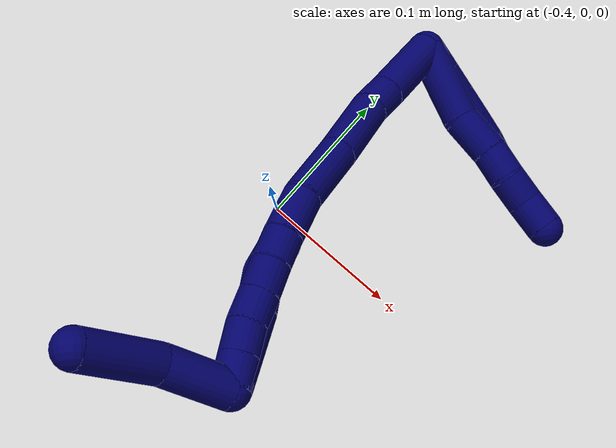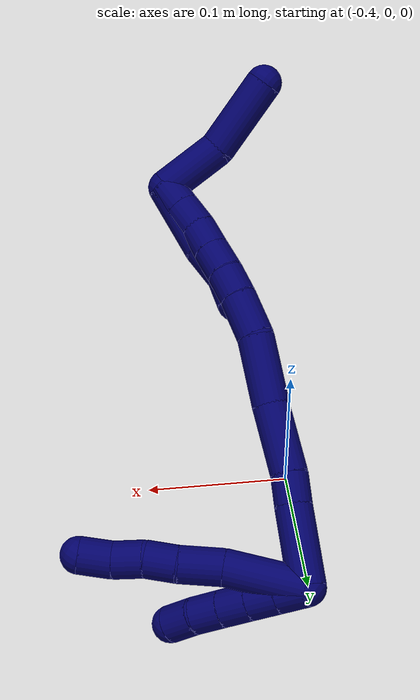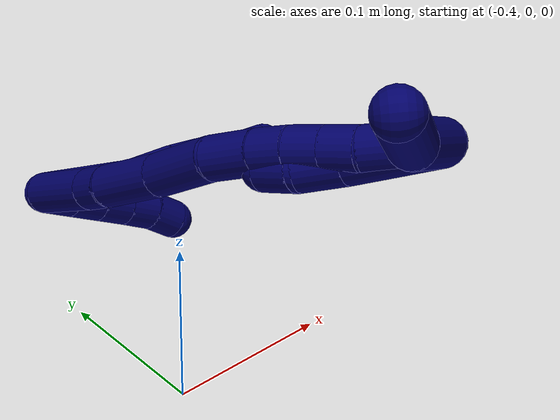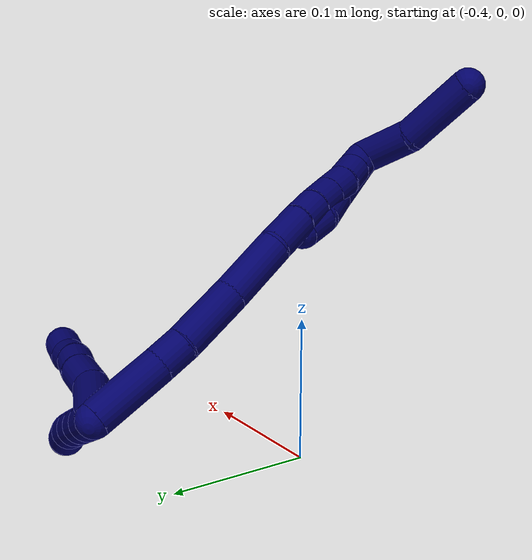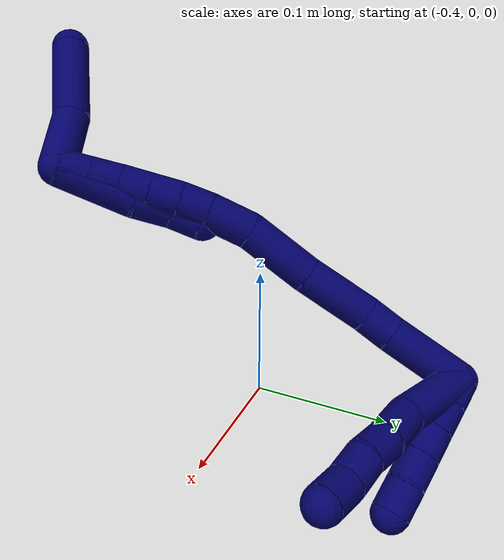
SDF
<sdf version="1.7">
 <world name="default">
  <model name="7">
   <static>0</static>
   <link name="7">
    <collision name="collision-cylinder-e_1_2_8">
     <pose>-0.004062 0.008483 -0.025797 -2.8239 -0.14847 0.869293</pose>
     <geometry><cylinder><radius>0.0125</radius><length>0.054916</length></cylinder></geometry>
     <surface>
      <friction><ode><mu>1.16</mu><mu2>1.16</mu2><slip1>0</slip1><slip2>0</slip2></ode></friction>
      <contact><ode><kp>1e+06</kp><kd>1</kd><max_vel>0</max_vel><min_depth>0.001</min_depth></ode></contact>
     </surface>
    </collision>
    <visual name="visual-cylinder-e_1_2_8">
     <pose>-0.004062 0.008483 -0.025797 -2.8239 -0.14847 0.869293</pose>
     <geometry><cylinder><radius>0.0125</radius><length>0.054916</length></cylinder></geometry>
     <material><ambient>0.003922 0 0.403922 1</ambient></material>
    </visual>
    <collision name="collision-cylinder-e_2_8_9">
     <pose>-0.009658 0.025133 -0.064188 -2.56629 -0.101876 0.341289</pose>
     <geometry><cylinder><radius>0.0125</radius><length>0.030178</length></cylinder></geometry>
     <surface>
      <friction><ode><mu>1.16</mu><mu2>1.16</mu2><slip1>0</slip1><slip2>0</slip2></ode></friction>
      <contact><ode><kp>1e+06</kp><kd>1</kd><max_vel>0</max_vel><min_depth>0.001</min_depth></ode></contact>
     </surface>
    </collision>
    <visual name="visual-cylinder-e_2_8_9">
     <pose>-0.009658 0.025133 -0.064188 -2.56629 -0.101876 0.341289</pose>
     <geometry><cylinder><radius>0.0125</radius><length>0.030178</length></cylinder></geometry>
     <material><ambient>0.003922 0 0.403922 1</ambient></material>
    </visual>
    <collision name="collision-cylinder-e_3_9_10">
     <pose>-0.012456 0.037796 -0.086332 -2.70154 -0.119136 0.521202</pose>
     <geometry><cylinder><radius>0.0125</radius><length>0.021259</length></cylinder></geometry>
     <surface>
      <friction><ode><mu>1.16</mu><mu2>1.16</mu2><slip1>0</slip1><slip2>0</slip2></ode></friction>
      <contact><ode><kp>1e+06</kp><kd>1</kd><max_vel>0</max_vel><min_depth>0.001</min_depth></ode></contact>
     </surface>
    </collision>
    <visual name="visual-cylinder-e_3_9_10">
     <pose>-0.012456 0.037796 -0.086332 -2.70154 -0.119136 0.521202</pose>
     <geometry><cylinder><radius>0.0125</radius><length>0.021259</length></cylinder></geometry>
     <material><ambient>0.003922 0 0.403922 1</ambient></material>
    </visual>
    <collision name="collision-cylinder-e_4_10_11">
     <pose>-0.01702 0.047335 -0.104549 -2.6147 -0.317989 1.07273</pose>
     <geometry><cylinder><radius>0.0125</radius><length>0.021117</length></cylinder></geometry>
     <surface>
      <friction><ode><mu>1.16</mu><mu2>1.16</mu2><slip1>0</slip1><slip2>0</slip2></ode></friction>
      <contact><ode><kp>1e+06</kp><kd>1</kd><max_vel>0</max_vel><min_depth>0.001</min_depth></ode></contact>
     </surface>
    </collision>
    <visual name="visual-cylinder-e_4_10_11">
     <pose>-0.01702 0.047335 -0.104549 -2.6147 -0.317989 1.07273</pose>
     <geometry><cylinder><radius>0.0125</radius><length>0.021117</length></cylinder></geometry>
     <material><ambient>0.003922 0 0.403922 1</ambient></material>
    </visual>
    <collision name="collision-cylinder-e_5_11_6">
     <pose>-0.02118 0.057768 -0.123073 -2.64111 -0.076308 0.296502</pose>
     <geometry><cylinder><radius>0.0125</radius><length>0.02253</length></cylinder></geometry>
     <surface>
      <friction><ode><mu>1.16</mu><mu2>1.16</mu2><slip1>0</slip1><slip2>0</slip2></ode></friction>
      <contact><ode><kp>1e+06</kp><kd>1</kd><max_vel>0</max_vel><min_depth>0.001</min_depth></ode></contact>
     </surface>
    </collision>
    <visual name="visual-cylinder-e_5_11_6">
     <pose>-0.02118 0.057768 -0.123073 -2.64111 -0.076308 0.296502</pose>
     <geometry><cylinder><radius>0.0125</radius><length>0.02253</length></cylinder></geometry>
     <material><ambient>0.003922 0 0.403922 1</ambient></material>
    </visual>
    <collision name="collision-cylinder-e_1_2_12">
     <pose>-0.005746 0.004261 -0.006988 -2.59404 -0.61213 1.68851</pose>
     <geometry><cylinder><radius>0.0125</radius><length>0.02</length></cylinder></geometry>
     <surface>
      <friction><ode><mu>1.16</mu><mu2>1.16</mu2><slip1>0</slip1><slip2>0</slip2></ode></friction>
      <contact><ode><kp>1e+06</kp><kd>1</kd><max_vel>0</max_vel><min_depth>0.001</min_depth></ode></contact>
     </surface>
    </collision>
    <visual name="visual-cylinder-e_1_2_12">
     <pose>-0.005746 0.004261 -0.006988 -2.59404 -0.61213 1.68851</pose>
     <geometry><cylinder><radius>0.0125</radius><length>0.02</length></cylinder></geometry>
     <material><ambient>0.003922 0 0.403922 1</ambient></material>
    </visual>
    <collision name="collision-cylinder-e_2_12_13">
     <pose>-0.017233 0.012776 -0.020972 -2.59521 -0.611434 1.68953</pose>
     <geometry><cylinder><radius>0.0125</radius><length>0.02</length></cylinder></geometry>
     <surface>
      <friction><ode><mu>1.16</mu><mu2>1.16</mu2><slip1>0</slip1><slip2>0</slip2></ode></friction>
      <contact><ode><kp>1e+06</kp><kd>1</kd><max_vel>0</max_vel><min_depth>0.001</min_depth></ode></contact>
     </surface>
    </collision>
    <visual name="visual-cylinder-e_2_12_13">
     <pose>-0.017233 0.012776 -0.020972 -2.59521 -0.611434 1.68953</pose>
     <geometry><cylinder><radius>0.0125</radius><length>0.02</length></cylinder></geometry>
     <material><ambient>0.003922 0 0.403922 1</ambient></material>
    </visual>
    <collision name="collision-cylinder-e_3_13_14">
     <pose>-0.028726 0.021317 -0.034934 -2.59004 -0.61294 1.6823</pose>
     <geometry><cylinder><radius>0.0125</radius><length>0.02</length></cylinder></geometry>
     <surface>
      <friction><ode><mu>1.16</mu><mu2>1.16</mu2><slip1>0</slip1><slip2>0</slip2></ode></friction>
      <contact><ode><kp>1e+06</kp><kd>1</kd><max_vel>0</max_vel><min_depth>0.001</min_depth></ode></contact>
     </surface>
    </collision>
    <visual name="visual-cylinder-e_3_13_14">
     <pose>-0.028726 0.021317 -0.034934 -2.59004 -0.61294 1.6823</pose>
     <geometry><cylinder><radius>0.0125</radius><length>0.02</length></cylinder></geometry>
     <material><ambient>0.003922 0 0.403922 1</ambient></material>
    </visual>
    <collision name="collision-cylinder-e_4_14_15">
     <pose>-0.040363 0.029787 -0.04882 -2.59773 -0.62915 1.72454</pose>
     <geometry><cylinder><radius>0.0125</radius><length>0.02</length></cylinder></geometry>
     <surface>
      <friction><ode><mu>1.16</mu><mu2>1.16</mu2><slip1>0</slip1><slip2>0</slip2></ode></friction>
      <contact><ode><kp>1e+06</kp><kd>1</kd><max_vel>0</max_vel><min_depth>0.001</min_depth></ode></contact>
     </surface>
    </collision>
    <visual name="visual-cylinder-e_4_14_15">
     <pose>-0.040363 0.029787 -0.04882 -2.59773 -0.62915 1.72454</pose>
     <geometry><cylinder><radius>0.0125</radius><length>0.02</length></cylinder></geometry>
     <material><ambient>0.003922 0 0.403922 1</ambient></material>
    </visual>
    <collision name="collision-cylinder-e_5_15_5">
     <pose>-0.053265 0.037219 -0.062079 -2.66809 -0.77783 2.07734</pose>
     <geometry><cylinder><radius>0.0125</radius><length>0.02</length></cylinder></geometry>
     <surface>
      <friction><ode><mu>1.16</mu><mu2>1.16</mu2><slip1>0</slip1><slip2>0</slip2></ode></friction>
      <contact><ode><kp>1e+06</kp><kd>1</kd><max_vel>0</max_vel><min_depth>0.001</min_depth></ode></contact>
     </surface>
    </collision>
    <visual name="visual-cylinder-e_5_15_5">
     <pose>-0.053265 0.037219 -0.062079 -2.66809 -0.77783 2.07734</pose>
     <geometry><cylinder><radius>0.0125</radius><length>0.02</length></cylinder></geometry>
     <material><ambient>0.003922 0 0.403922 1</ambient></material>
    </visual>
    <collision name="collision-cylinder-e_1_2_16">
     <pose>0.011424 -0.015753 -0.018206 2.4283 0.443062 1.08745</pose>
     <geometry><cylinder><radius>0.0125</radius><length>0.053297</length></cylinder></geometry>
     <surface>
      <friction><ode><mu>1.16</mu><mu2>1.16</mu2><slip1>0</slip1><slip2>0</slip2></ode></friction>
      <contact><ode><kp>1e+06</kp><kd>1</kd><max_vel>0</max_vel><min_depth>0.001</min_depth></ode></contact>
     </surface>
    </collision>
    <visual name="visual-cylinder-e_1_2_16">
     <pose>0.011424 -0.015753 -0.018206 2.4283 0.443062 1.08745</pose>
     <geometry><cylinder><radius>0.0125</radius><length>0.053297</length></cylinder></geometry>
     <material><ambient>0.003922 0 0.403922 1</ambient></material>
    </visual>
    <collision name="collision-cylinder-e_2_16_17">
     <pose>0.027794 -0.037733 -0.043292 2.40597 0.489638 1.15039</pose>
     <geometry><cylinder><radius>0.0125</radius><length>0.02103</length></cylinder></geometry>
     <surface>
      <friction><ode><mu>1.16</mu><mu2>1.16</mu2><slip1>0</slip1><slip2>0</slip2></ode></friction>
      <contact><ode><kp>1e+06</kp><kd>1</kd><max_vel>0</max_vel><min_depth>0.001</min_depth></ode></contact>
     </surface>
    </collision>
    <visual name="visual-cylinder-e_2_16_17">
     <pose>0.027794 -0.037733 -0.043292 2.40597 0.489638 1.15039</pose>
     <geometry><cylinder><radius>0.0125</radius><length>0.02103</length></cylinder></geometry>
     <material><ambient>0.003922 0 0.403922 1</ambient></material>
    </visual>
    <collision name="collision-cylinder-e_3_17_18">
     <pose>0.04346 -0.055682 -0.067651 2.55089 0.471137 1.33589</pose>
     <geometry><cylinder><radius>0.0125</radius><length>0.047238</length></cylinder></geometry>
     <surface>
      <friction><ode><mu>1.16</mu><mu2>1.16</mu2><slip1>0</slip1><slip2>0</slip2></ode></friction>
      <contact><ode><kp>1e+06</kp><kd>1</kd><max_vel>0</max_vel><min_depth>0.001</min_depth></ode></contact>
     </surface>
    </collision>
    <visual name="visual-cylinder-e_3_17_18">
     <pose>0.04346 -0.055682 -0.067651 2.55089 0.471137 1.33589</pose>
     <geometry><cylinder><radius>0.0125</radius><length>0.047238</length></cylinder></geometry>
     <material><ambient>0.003922 0 0.403922 1</ambient></material>
    </visual>
    <collision name="collision-cylinder-e_4_18_19">
     <pose>0.066295 -0.079081 -0.101763 2.52943 0.537548 1.43381</pose>
     <geometry><cylinder><radius>0.0125</radius><length>0.04732</length></cylinder></geometry>
     <surface>
      <friction><ode><mu>1.16</mu><mu2>1.16</mu2><slip1>0</slip1><slip2>0</slip2></ode></friction>
      <contact><ode><kp>1e+06</kp><kd>1</kd><max_vel>0</max_vel><min_depth>0.001</min_depth></ode></contact>
     </surface>
    </collision>
    <visual name="visual-cylinder-e_4_18_19">
     <pose>0.066295 -0.079081 -0.101763 2.52943 0.537548 1.43381</pose>
     <geometry><cylinder><radius>0.0125</radius><length>0.04732</length></cylinder></geometry>
     <material><ambient>0.003922 0 0.403922 1</ambient></material>
    </visual>
    <collision name="collision-cylinder-e_5_19_20">
     <pose>0.083723 -0.097242 -0.131118 2.67036 0.356267 1.28693</pose>
     <geometry><cylinder><radius>0.0125</radius><length>0.03047</length></cylinder></geometry>
     <surface>
      <friction><ode><mu>1.16</mu><mu2>1.16</mu2><slip1>0</slip1><slip2>0</slip2></ode></friction>
      <contact><ode><kp>1e+06</kp><kd>1</kd><max_vel>0</max_vel><min_depth>0.001</min_depth></ode></contact>
     </surface>
    </collision>
    <visual name="visual-cylinder-e_5_19_20">
     <pose>0.083723 -0.097242 -0.131118 2.67036 0.356267 1.28693</pose>
     <geometry><cylinder><radius>0.0125</radius><length>0.03047</length></cylinder></geometry>
     <material><ambient>0.003922 0 0.403922 1</ambient></material>
    </visual>
    <collision name="collision-cylinder-e_6_20_21">
     <pose>0.091838 -0.107889 -0.152669 2.70079 0.279401 1.12098</pose>
     <geometry><cylinder><radius>0.0125</radius><length>0.020311</length></cylinder></geometry>
     <surface>
      <friction><ode><mu>1.16</mu><mu2>1.16</mu2><slip1>0</slip1><slip2>0</slip2></ode></friction>
      <contact><ode><kp>1e+06</kp><kd>1</kd><max_vel>0</max_vel><min_depth>0.001</min_depth></ode></contact>
     </surface>
    </collision>
    <visual name="visual-cylinder-e_6_20_21">
     <pose>0.091838 -0.107889 -0.152669 2.70079 0.279401 1.12098</pose>
     <geometry><cylinder><radius>0.0125</radius><length>0.020311</length></cylinder></geometry>
     <material><ambient>0.003922 0 0.403922 1</ambient></material>
    </visual>
    <collision name="collision-cylinder-e_7_21_22">
     <pose>0.096533 -0.116129 -0.17053 2.71781 0.188886 0.829566</pose>
     <geometry><cylinder><radius>0.0125</radius><length>0.020177</length></cylinder></geometry>
     <surface>
      <friction><ode><mu>1.16</mu><mu2>1.16</mu2><slip1>0</slip1><slip2>0</slip2></ode></friction>
      <contact><ode><kp>1e+06</kp><kd>1</kd><max_vel>0</max_vel><min_depth>0.001</min_depth></ode></contact>
     </surface>
    </collision>
    <visual name="visual-cylinder-e_7_21_22">
     <pose>0.096533 -0.116129 -0.17053 2.71781 0.188886 0.829566</pose>
     <geometry><cylinder><radius>0.0125</radius><length>0.020177</length></cylinder></geometry>
     <material><ambient>0.003922 0 0.403922 1</ambient></material>
    </visual>
    <collision name="collision-cylinder-e_8_22_23">
     <pose>0.10031 -0.124449 -0.188459 2.69633 0.188751 0.792072</pose>
     <geometry><cylinder><radius>0.0125</radius><length>0.020071</length></cylinder></geometry>
     <surface>
      <friction><ode><mu>1.16</mu><mu2>1.16</mu2><slip1>0</slip1><slip2>0</slip2></ode></friction>
      <contact><ode><kp>1e+06</kp><kd>1</kd><max_vel>0</max_vel><min_depth>0.001</min_depth></ode></contact>
     </surface>
    </collision>
    <visual name="visual-cylinder-e_8_22_23">
     <pose>0.10031 -0.124449 -0.188459 2.69633 0.188751 0.792072</pose>
     <geometry><cylinder><radius>0.0125</radius><length>0.020071</length></cylinder></geometry>
     <material><ambient>0.003922 0 0.403922 1</ambient></material>
    </visual>
    <collision name="collision-cylinder-e_9_23_24">
     <pose>0.104176 -0.13155 -0.206752 2.84665 0.19927 1.18467</pose>
     <geometry><cylinder><radius>0.0125</radius><length>0.020039</length></cylinder></geometry>
     <surface>
      <friction><ode><mu>1.16</mu><mu2>1.16</mu2><slip1>0</slip1><slip2>0</slip2></ode></friction>
      <contact><ode><kp>1e+06</kp><kd>1</kd><max_vel>0</max_vel><min_depth>0.001</min_depth></ode></contact>
     </surface>
    </collision>
    <visual name="visual-cylinder-e_9_23_24">
     <pose>0.104176 -0.13155 -0.206752 2.84665 0.19927 1.18467</pose>
     <geometry><cylinder><radius>0.0125</radius><length>0.020039</length></cylinder></geometry>
     <material><ambient>0.003922 0 0.403922 1</ambient></material>
    </visual>
    <collision name="collision-cylinder-e_10_24_1">
     <pose>0.108137 -0.137253 -0.225554 2.84751 0.198564 1.1841</pose>
     <geometry><cylinder><radius>0.0125</radius><length>0.020047</length></cylinder></geometry>
     <surface>
      <friction><ode><mu>1.16</mu><mu2>1.16</mu2><slip1>0</slip1><slip2>0</slip2></ode></friction>
      <contact><ode><kp>1e+06</kp><kd>1</kd><max_vel>0</max_vel><min_depth>0.001</min_depth></ode></contact>
     </surface>
    </collision>
    <visual name="visual-cylinder-e_10_24_1">
     <pose>0.108137 -0.137253 -0.225554 2.84751 0.198564 1.1841</pose>
     <geometry><cylinder><radius>0.0125</radius><length>0.020047</length></cylinder></geometry>
     <material><ambient>0.003922 0 0.403922 1</ambient></material>
    </visual>
    <collision name="collision-cylinder-e_1_1_25">
     <pose>0.101229 -0.132028 -0.211869 -0.336357 -0.348429 0.059745</pose>
     <geometry><cylinder><radius>0.0125</radius><length>0.052049</length></cylinder></geometry>
     <surface>
      <friction><ode><mu>1.16</mu><mu2>1.16</mu2><slip1>0</slip1><slip2>0</slip2></ode></friction>
      <contact><ode><kp>1e+06</kp><kd>1</kd><max_vel>0</max_vel><min_depth>0.001</min_depth></ode></contact>
     </surface>
    </collision>
    <visual name="visual-cylinder-e_1_1_25">
     <pose>0.101229 -0.132028 -0.211869 -0.336357 -0.348429 0.059745</pose>
     <geometry><cylinder><radius>0.0125</radius><length>0.052049</length></cylinder></geometry>
     <material><ambient>0.003922 0 0.403922 1</ambient></material>
    </visual>
    <collision name="collision-cylinder-e_2_25_26">
     <pose>0.089216 -0.12093 -0.176419 -0.240019 -0.241028 0.029205</pose>
     <geometry><cylinder><radius>0.0125</radius><length>0.026206</length></cylinder></geometry>
     <surface>
      <friction><ode><mu>1.16</mu><mu2>1.16</mu2><slip1>0</slip1><slip2>0</slip2></ode></friction>
      <contact><ode><kp>1e+06</kp><kd>1</kd><max_vel>0</max_vel><min_depth>0.001</min_depth></ode></contact>
     </surface>
    </collision>
    <visual name="visual-cylinder-e_2_25_26">
     <pose>0.089216 -0.12093 -0.176419 -0.240019 -0.241028 0.029205</pose>
     <geometry><cylinder><radius>0.0125</radius><length>0.026206</length></cylinder></geometry>
     <material><ambient>0.003922 0 0.403922 1</ambient></material>
    </visual>
    <collision name="collision-cylinder-e_3_26_4">
     <pose>0.083272 -0.112303 -0.155178 -0.562713 -0.262025 0.076131</pose>
     <geometry><cylinder><radius>0.0125</radius><length>0.021745</length></cylinder></geometry>
     <surface>
      <friction><ode><mu>1.16</mu><mu2>1.16</mu2><slip1>0</slip1><slip2>0</slip2></ode></friction>
      <contact><ode><kp>1e+06</kp><kd>1</kd><max_vel>0</max_vel><min_depth>0.001</min_depth></ode></contact>
     </surface>
    </collision>
    <visual name="visual-cylinder-e_3_26_4">
     <pose>0.083272 -0.112303 -0.155178 -0.562713 -0.262025 0.076131</pose>
     <geometry><cylinder><radius>0.0125</radius><length>0.021745</length></cylinder></geometry>
     <material><ambient>0.003922 0 0.403922 1</ambient></material>
    </visual>
    <collision name="collision-cylinder-e_1_1_27">
     <pose>0.12253 -0.157025 -0.227303 1.14595 0.589204 0.386644</pose>
     <geometry><cylinder><radius>0.0125</radius><length>0.044684</length></cylinder></geometry>
     <surface>
      <friction><ode><mu>1.16</mu><mu2>1.16</mu2><slip1>0</slip1><slip2>0</slip2></ode></friction>
      <contact><ode><kp>1e+06</kp><kd>1</kd><max_vel>0</max_vel><min_depth>0.001</min_depth></ode></contact>
     </surface>
    </collision>
    <visual name="visual-cylinder-e_1_1_27">
     <pose>0.12253 -0.157025 -0.227303 1.14595 0.589204 0.386644</pose>
     <geometry><cylinder><radius>0.0125</radius><length>0.044684</length></cylinder></geometry>
     <material><ambient>0.003922 0 0.403922 1</ambient></material>
    </visual>
    <collision name="collision-cylinder-e_2_27_3">
     <pose>0.155743 -0.191899 -0.216455 1.39482 0.851043 0.725827</pose>
     <geometry><cylinder><radius>0.0125</radius><length>0.055316</length></cylinder></geometry>
     <surface>
      <friction><ode><mu>1.16</mu><mu2>1.16</mu2><slip1>0</slip1><slip2>0</slip2></ode></friction>
      <contact><ode><kp>1e+06</kp><kd>1</kd><max_vel>0</max_vel><min_depth>0.001</min_depth></ode></contact>
     </surface>
    </collision>
    <visual name="visual-cylinder-e_2_27_3">
     <pose>0.155743 -0.191899 -0.216455 1.39482 0.851043 0.725827</pose>
     <geometry><cylinder><radius>0.0125</radius><length>0.055316</length></cylinder></geometry>
     <material><ambient>0.003922 0 0.403922 1</ambient></material>
    </visual>
    <collision name="collision-sphere-3">
     <pose>0.176541 -0.209849 -0.213263 0 -0 0</pose>
     <geometry><sphere><radius>0.0125</radius></sphere></geometry>
     <surface>
      <friction><ode><mu>1.16</mu><mu2>1.16</mu2><slip1>0</slip1><slip2>0</slip2></ode></friction>
      <contact><ode><kp>1e+06</kp><kd>1</kd><max_vel>0</max_vel><min_depth>0.001</min_depth></ode></contact>
     </surface>
    </collision>
    <visual name="visual-sphere-3">
     <pose>0.176541 -0.209849 -0.213263 0 -0 0</pose>
     <geometry><sphere><radius>0.0125</radius></sphere></geometry>
     <material><ambient>0.003922 0 0.403922 1</ambient></material>
    </visual>
    <collision name="collision-sphere-27">
     <pose>0.134945 -0.173948 -0.219647 0 -0 0</pose>
     <geometry><sphere><radius>0.0125</radius></sphere></geometry>
     <surface>
      <friction><ode><mu>1.16</mu><mu2>1.16</mu2><slip1>0</slip1><slip2>0</slip2></ode></friction>
      <contact><ode><kp>1e+06</kp><kd>1</kd><max_vel>0</max_vel><min_depth>0.001</min_depth></ode></contact>
     </surface>
    </collision>
    <visual name="visual-sphere-27">
     <pose>0.134945 -0.173948 -0.219647 0 -0 0</pose>
     <geometry><sphere><radius>0.0125</radius></sphere></geometry>
     <material><ambient>0.003922 0 0.403922 1</ambient></material>
    </visual>
    <collision name="collision-sphere-4">
     <pose>0.080455 -0.1067 -0.146295 0 -0 0</pose>
     <geometry><sphere><radius>0.0125</radius></sphere></geometry>
     <surface>
      <friction><ode><mu>1.16</mu><mu2>1.16</mu2><slip1>0</slip1><slip2>0</slip2></ode></friction>
      <contact><ode><kp>1e+06</kp><kd>1</kd><max_vel>0</max_vel><min_depth>0.001</min_depth></ode></contact>
     </surface>
    </collision>
    <visual name="visual-sphere-4">
     <pose>0.080455 -0.1067 -0.146295 0 -0 0</pose>
     <geometry><sphere><radius>0.0125</radius></sphere></geometry>
     <material><ambient>0.003922 0 0.403922 1</ambient></material>
    </visual>
    <collision name="collision-sphere-26">
     <pose>0.086088 -0.117905 -0.16406 0 -0 0</pose>
     <geometry><sphere><radius>0.0125</radius></sphere></geometry>
     <surface>
      <friction><ode><mu>1.16</mu><mu2>1.16</mu2><slip1>0</slip1><slip2>0</slip2></ode></friction>
      <contact><ode><kp>1e+06</kp><kd>1</kd><max_vel>0</max_vel><min_depth>0.001</min_depth></ode></contact>
     </surface>
    </collision>
    <visual name="visual-sphere-26">
     <pose>0.086088 -0.117905 -0.16406 0 -0 0</pose>
     <geometry><sphere><radius>0.0125</radius></sphere></geometry>
     <material><ambient>0.003922 0 0.403922 1</ambient></material>
    </visual>
    <collision name="collision-sphere-25">
     <pose>0.092344 -0.123955 -0.188779 0 -0 0</pose>
     <geometry><sphere><radius>0.0125</radius></sphere></geometry>
     <surface>
      <friction><ode><mu>1.16</mu><mu2>1.16</mu2><slip1>0</slip1><slip2>0</slip2></ode></friction>
      <contact><ode><kp>1e+06</kp><kd>1</kd><max_vel>0</max_vel><min_depth>0.001</min_depth></ode></contact>
     </surface>
    </collision>
    <visual name="visual-sphere-25">
     <pose>0.092344 -0.123955 -0.188779 0 -0 0</pose>
     <geometry><sphere><radius>0.0125</radius></sphere></geometry>
     <material><ambient>0.003922 0 0.403922 1</ambient></material>
    </visual>
    <collision name="collision-sphere-1">
     <pose>0.110114 -0.140101 -0.234959 0 -0 0</pose>
     <geometry><sphere><radius>0.0125</radius></sphere></geometry>
     <surface>
      <friction><ode><mu>1.16</mu><mu2>1.16</mu2><slip1>0</slip1><slip2>0</slip2></ode></friction>
      <contact><ode><kp>1e+06</kp><kd>1</kd><max_vel>0</max_vel><min_depth>0.001</min_depth></ode></contact>
     </surface>
    </collision>
    <visual name="visual-sphere-1">
     <pose>0.110114 -0.140101 -0.234959 0 -0 0</pose>
     <geometry><sphere><radius>0.0125</radius></sphere></geometry>
     <material><ambient>0.003922 0 0.403922 1</ambient></material>
    </visual>
    <collision name="collision-sphere-24">
     <pose>0.10616 -0.134404 -0.216149 0 -0 0</pose>
     <geometry><sphere><radius>0.0125</radius></sphere></geometry>
     <surface>
      <friction><ode><mu>1.16</mu><mu2>1.16</mu2><slip1>0</slip1><slip2>0</slip2></ode></friction>
      <contact><ode><kp>1e+06</kp><kd>1</kd><max_vel>0</max_vel><min_depth>0.001</min_depth></ode></contact>
     </surface>
    </collision>
    <visual name="visual-sphere-24">
     <pose>0.10616 -0.134404 -0.216149 0 -0 0</pose>
     <geometry><sphere><radius>0.0125</radius></sphere></geometry>
     <material><ambient>0.003922 0 0.403922 1</ambient></material>
    </visual>
    <collision name="collision-sphere-23">
     <pose>0.102193 -0.128695 -0.197355 0 -0 0</pose>
     <geometry><sphere><radius>0.0125</radius></sphere></geometry>
     <surface>
      <friction><ode><mu>1.16</mu><mu2>1.16</mu2><slip1>0</slip1><slip2>0</slip2></ode></friction>
      <contact><ode><kp>1e+06</kp><kd>1</kd><max_vel>0</max_vel><min_depth>0.001</min_depth></ode></contact>
     </surface>
    </collision>
    <visual name="visual-sphere-23">
     <pose>0.102193 -0.128695 -0.197355 0 -0 0</pose>
     <geometry><sphere><radius>0.0125</radius></sphere></geometry>
     <material><ambient>0.003922 0 0.403922 1</ambient></material>
    </visual>
    <collision name="collision-sphere-22">
     <pose>0.098427 -0.120204 -0.179563 0 -0 0</pose>
     <geometry><sphere><radius>0.0125</radius></sphere></geometry>
     <surface>
      <friction><ode><mu>1.16</mu><mu2>1.16</mu2><slip1>0</slip1><slip2>0</slip2></ode></friction>
      <contact><ode><kp>1e+06</kp><kd>1</kd><max_vel>0</max_vel><min_depth>0.001</min_depth></ode></contact>
     </surface>
    </collision>
    <visual name="visual-sphere-22">
     <pose>0.098427 -0.120204 -0.179563 0 -0 0</pose>
     <geometry><sphere><radius>0.0125</radius></sphere></geometry>
     <material><ambient>0.003922 0 0.403922 1</ambient></material>
    </visual>
    <collision name="collision-sphere-21">
     <pose>0.094638 -0.112054 -0.161498 0 -0 0</pose>
     <geometry><sphere><radius>0.0125</radius></sphere></geometry>
     <surface>
      <friction><ode><mu>1.16</mu><mu2>1.16</mu2><slip1>0</slip1><slip2>0</slip2></ode></friction>
      <contact><ode><kp>1e+06</kp><kd>1</kd><max_vel>0</max_vel><min_depth>0.001</min_depth></ode></contact>
     </surface>
    </collision>
    <visual name="visual-sphere-21">
     <pose>0.094638 -0.112054 -0.161498 0 -0 0</pose>
     <geometry><sphere><radius>0.0125</radius></sphere></geometry>
     <material><ambient>0.003922 0 0.403922 1</ambient></material>
    </visual>
    <collision name="collision-sphere-6">
     <pose>-0.022039 0.063158 -0.132927 0 -0 0</pose>
     <geometry><sphere><radius>0.0125</radius></sphere></geometry>
     <surface>
      <friction><ode><mu>1.16</mu><mu2>1.16</mu2><slip1>0</slip1><slip2>0</slip2></ode></friction>
      <contact><ode><kp>1e+06</kp><kd>1</kd><max_vel>0</max_vel><min_depth>0.001</min_depth></ode></contact>
     </surface>
    </collision>
    <visual name="visual-sphere-6">
     <pose>-0.022039 0.063158 -0.132927 0 -0 0</pose>
     <geometry><sphere><radius>0.0125</radius></sphere></geometry>
     <material><ambient>0.003922 0 0.403922 1</ambient></material>
    </visual>
    <collision name="collision-sphere-11">
     <pose>-0.020322 0.052378 -0.113218 0 -0 0</pose>
     <geometry><sphere><radius>0.0125</radius></sphere></geometry>
     <surface>
      <friction><ode><mu>1.16</mu><mu2>1.16</mu2><slip1>0</slip1><slip2>0</slip2></ode></friction>
      <contact><ode><kp>1e+06</kp><kd>1</kd><max_vel>0</max_vel><min_depth>0.001</min_depth></ode></contact>
     </surface>
    </collision>
    <visual name="visual-sphere-11">
     <pose>-0.020322 0.052378 -0.113218 0 -0 0</pose>
     <geometry><sphere><radius>0.0125</radius></sphere></geometry>
     <material><ambient>0.003922 0 0.403922 1</ambient></material>
    </visual>
    <collision name="collision-sphere-10">
     <pose>-0.013719 0.042292 -0.09588 0 -0 0</pose>
     <geometry><sphere><radius>0.0125</radius></sphere></geometry>
     <surface>
      <friction><ode><mu>1.16</mu><mu2>1.16</mu2><slip1>0</slip1><slip2>0</slip2></ode></friction>
      <contact><ode><kp>1e+06</kp><kd>1</kd><max_vel>0</max_vel><min_depth>0.001</min_depth></ode></contact>
     </surface>
    </collision>
    <visual name="visual-sphere-10">
     <pose>-0.013719 0.042292 -0.09588 0 -0 0</pose>
     <geometry><sphere><radius>0.0125</radius></sphere></geometry>
     <material><ambient>0.003922 0 0.403922 1</ambient></material>
    </visual>
    <collision name="collision-sphere-9">
     <pose>-0.011193 0.0333 -0.076783 0 -0 0</pose>
     <geometry><sphere><radius>0.0125</radius></sphere></geometry>
     <surface>
      <friction><ode><mu>1.16</mu><mu2>1.16</mu2><slip1>0</slip1><slip2>0</slip2></ode></friction>
      <contact><ode><kp>1e+06</kp><kd>1</kd><max_vel>0</max_vel><min_depth>0.001</min_depth></ode></contact>
     </surface>
    </collision>
    <visual name="visual-sphere-9">
     <pose>-0.011193 0.0333 -0.076783 0 -0 0</pose>
     <geometry><sphere><radius>0.0125</radius></sphere></geometry>
     <material><ambient>0.003922 0 0.403922 1</ambient></material>
    </visual>
    <collision name="collision-sphere-2">
     <geometry><sphere><radius>0.0125</radius></sphere></geometry>
     <surface>
      <friction><ode><mu>1.16</mu><mu2>1.16</mu2><slip1>0</slip1><slip2>0</slip2></ode></friction>
      <contact><ode><kp>1e+06</kp><kd>1</kd><max_vel>0</max_vel><min_depth>0.001</min_depth></ode></contact>
     </surface>
    </collision>
    <visual name="visual-sphere-2">
     <geometry><sphere><radius>0.0125</radius></sphere></geometry>
     <material><ambient>0.003922 0 0.403922 1</ambient></material>
    </visual>
    <collision name="collision-sphere-19">
     <pose>0.07841 -0.09076 -0.118396 0 -0 0</pose>
     <geometry><sphere><radius>0.0125</radius></sphere></geometry>
     <surface>
      <friction><ode><mu>1.16</mu><mu2>1.16</mu2><slip1>0</slip1><slip2>0</slip2></ode></friction>
      <contact><ode><kp>1e+06</kp><kd>1</kd><max_vel>0</max_vel><min_depth>0.001</min_depth></ode></contact>
     </surface>
    </collision>
    <visual name="visual-sphere-19">
     <pose>0.07841 -0.09076 -0.118396 0 -0 0</pose>
     <geometry><sphere><radius>0.0125</radius></sphere></geometry>
     <material><ambient>0.003922 0 0.403922 1</ambient></material>
    </visual>
    <collision name="collision-sphere-8">
     <pose>-0.008123 0.016965 -0.051594 0 -0 0</pose>
     <geometry><sphere><radius>0.0125</radius></sphere></geometry>
     <surface>
      <friction><ode><mu>1.16</mu><mu2>1.16</mu2><slip1>0</slip1><slip2>0</slip2></ode></friction>
      <contact><ode><kp>1e+06</kp><kd>1</kd><max_vel>0</max_vel><min_depth>0.001</min_depth></ode></contact>
     </surface>
    </collision>
    <visual name="visual-sphere-8">
     <pose>-0.008123 0.016965 -0.051594 0 -0 0</pose>
     <geometry><sphere><radius>0.0125</radius></sphere></geometry>
     <material><ambient>0.003922 0 0.403922 1</ambient></material>
    </visual>
    <collision name="collision-sphere-12">
     <pose>-0.011492 0.008521 -0.013976 0 -0 0</pose>
     <geometry><sphere><radius>0.0125</radius></sphere></geometry>
     <surface>
      <friction><ode><mu>1.16</mu><mu2>1.16</mu2><slip1>0</slip1><slip2>0</slip2></ode></friction>
      <contact><ode><kp>1e+06</kp><kd>1</kd><max_vel>0</max_vel><min_depth>0.001</min_depth></ode></contact>
     </surface>
    </collision>
    <visual name="visual-sphere-12">
     <pose>-0.011492 0.008521 -0.013976 0 -0 0</pose>
     <geometry><sphere><radius>0.0125</radius></sphere></geometry>
     <material><ambient>0.003922 0 0.403922 1</ambient></material>
    </visual>
    <collision name="collision-sphere-13">
     <pose>-0.022973 0.017031 -0.027968 0 -0 0</pose>
     <geometry><sphere><radius>0.0125</radius></sphere></geometry>
     <surface>
      <friction><ode><mu>1.16</mu><mu2>1.16</mu2><slip1>0</slip1><slip2>0</slip2></ode></friction>
      <contact><ode><kp>1e+06</kp><kd>1</kd><max_vel>0</max_vel><min_depth>0.001</min_depth></ode></contact>
     </surface>
    </collision>
    <visual name="visual-sphere-13">
     <pose>-0.022973 0.017031 -0.027968 0 -0 0</pose>
     <geometry><sphere><radius>0.0125</radius></sphere></geometry>
     <material><ambient>0.003922 0 0.403922 1</ambient></material>
    </visual>
    <collision name="collision-sphere-14">
     <pose>-0.034479 0.025603 -0.041901 0 -0 0</pose>
     <geometry><sphere><radius>0.0125</radius></sphere></geometry>
     <surface>
      <friction><ode><mu>1.16</mu><mu2>1.16</mu2><slip1>0</slip1><slip2>0</slip2></ode></friction>
      <contact><ode><kp>1e+06</kp><kd>1</kd><max_vel>0</max_vel><min_depth>0.001</min_depth></ode></contact>
     </surface>
    </collision>
    <visual name="visual-sphere-14">
     <pose>-0.034479 0.025603 -0.041901 0 -0 0</pose>
     <geometry><sphere><radius>0.0125</radius></sphere></geometry>
     <material><ambient>0.003922 0 0.403922 1</ambient></material>
    </visual>
    <collision name="collision-sphere-15">
     <pose>-0.046248 0.03397 -0.055738 0 -0 0</pose>
     <geometry><sphere><radius>0.0125</radius></sphere></geometry>
     <surface>
      <friction><ode><mu>1.16</mu><mu2>1.16</mu2><slip1>0</slip1><slip2>0</slip2></ode></friction>
      <contact><ode><kp>1e+06</kp><kd>1</kd><max_vel>0</max_vel><min_depth>0.001</min_depth></ode></contact>
     </surface>
    </collision>
    <visual name="visual-sphere-15">
     <pose>-0.046248 0.03397 -0.055738 0 -0 0</pose>
     <geometry><sphere><radius>0.0125</radius></sphere></geometry>
     <material><ambient>0.003922 0 0.403922 1</ambient></material>
    </visual>
    <collision name="collision-sphere-5">
     <pose>-0.060282 0.040468 -0.06842 0 -0 0</pose>
     <geometry><sphere><radius>0.0125</radius></sphere></geometry>
     <surface>
      <friction><ode><mu>1.16</mu><mu2>1.16</mu2><slip1>0</slip1><slip2>0</slip2></ode></friction>
      <contact><ode><kp>1e+06</kp><kd>1</kd><max_vel>0</max_vel><min_depth>0.001</min_depth></ode></contact>
     </surface>
    </collision>
    <visual name="visual-sphere-5">
     <pose>-0.060282 0.040468 -0.06842 0 -0 0</pose>
     <geometry><sphere><radius>0.0125</radius></sphere></geometry>
     <material><ambient>0.003922 0 0.403922 1</ambient></material>
    </visual>
    <collision name="collision-sphere-16">
     <pose>0.022849 -0.031506 -0.036412 0 -0 0</pose>
     <geometry><sphere><radius>0.0125</radius></sphere></geometry>
     <surface>
      <friction><ode><mu>1.16</mu><mu2>1.16</mu2><slip1>0</slip1><slip2>0</slip2></ode></friction>
      <contact><ode><kp>1e+06</kp><kd>1</kd><max_vel>0</max_vel><min_depth>0.001</min_depth></ode></contact>
     </surface>
    </collision>
    <visual name="visual-sphere-16">
     <pose>0.022849 -0.031506 -0.036412 0 -0 0</pose>
     <geometry><sphere><radius>0.0125</radius></sphere></geometry>
     <material><ambient>0.003922 0 0.403922 1</ambient></material>
    </visual>
    <collision name="collision-sphere-17">
     <pose>0.032739 -0.04396 -0.050172 0 -0 0</pose>
     <geometry><sphere><radius>0.0125</radius></sphere></geometry>
     <surface>
      <friction><ode><mu>1.16</mu><mu2>1.16</mu2><slip1>0</slip1><slip2>0</slip2></ode></friction>
      <contact><ode><kp>1e+06</kp><kd>1</kd><max_vel>0</max_vel><min_depth>0.001</min_depth></ode></contact>
     </surface>
    </collision>
    <visual name="visual-sphere-17">
     <pose>0.032739 -0.04396 -0.050172 0 -0 0</pose>
     <geometry><sphere><radius>0.0125</radius></sphere></geometry>
     <material><ambient>0.003922 0 0.403922 1</ambient></material>
    </visual>
    <collision name="collision-sphere-18">
     <pose>0.05418 -0.067403 -0.085131 0 -0 0</pose>
     <geometry><sphere><radius>0.0125</radius></sphere></geometry>
     <surface>
      <friction><ode><mu>1.16</mu><mu2>1.16</mu2><slip1>0</slip1><slip2>0</slip2></ode></friction>
      <contact><ode><kp>1e+06</kp><kd>1</kd><max_vel>0</max_vel><min_depth>0.001</min_depth></ode></contact>
     </surface>
    </collision>
    <visual name="visual-sphere-18">
     <pose>0.05418 -0.067403 -0.085131 0 -0 0</pose>
     <geometry><sphere><radius>0.0125</radius></sphere></geometry>
     <material><ambient>0.003922 0 0.403922 1</ambient></material>
    </visual>
    <collision name="collision-sphere-20">
     <pose>0.089037 -0.103724 -0.14384 0 -0 0</pose>
     <geometry><sphere><radius>0.0125</radius></sphere></geometry>
     <surface>
      <friction><ode><mu>1.16</mu><mu2>1.16</mu2><slip1>0</slip1><slip2>0</slip2></ode></friction>
      <contact><ode><kp>1e+06</kp><kd>1</kd><max_vel>0</max_vel><min_depth>0.001</min_depth></ode></contact>
     </surface>
    </collision>
    <visual name="visual-sphere-20">
     <pose>0.089037 -0.103724 -0.14384 0 -0 0</pose>
     <geometry><sphere><radius>0.0125</radius></sphere></geometry>
     <material><ambient>0.003922 0 0.403922 1</ambient></material>
    </visual>
    <inertial>
     <pose>0.050669 -0.062756 -0.116903 0 -0 0</pose>
     <mass>0.75</mass>
     <inertia>
      <ixx>0.000141</ixx>
      <ixy>0</ixy>
      <ixz>0</ixz>
      <iyy>8.6e-05</iyy>
      <iyz>0</iyz>
      <izz>-2.5e-05</izz>
     </inertia>
    </inertial>
   </link>
   <pose>-0.388624 0.148119 0.059167 2.65037 -1.42157 2.89766</pose>
  </model>
 </world>
</sdf>
